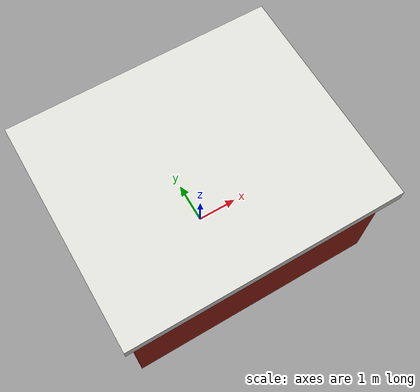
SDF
<?xml version="1.0"?>
<sdf version="1.9">
  <model name="house_alpha">
    <!-- Static: no physics/gravity interaction beyond being a solid,
         collidable box -- this is a target structure for the crash-test
         demo, not a simulated building with interior physics. -->
    <static>true</static>
    <link name="body">
      <collision name="collision">
        <geometry>
          <box>
            <size>6 5 3</size>
          </box>
        </geometry>
      </collision>
      <visual name="walls">
        <pose>0 0 1.5 0 0 0</pose>
        <geometry>
          <box>
            <size>6 5 3</size>
          </box>
        </geometry>
        <material>
          <ambient>0.65 0.15 0.1 1</ambient>
          <diffuse>0.65 0.15 0.1 1</diffuse>
        </material>
      </visual>
      <visual name="roof">
        <pose>0 0 3.15 0 0 0</pose>
        <geometry>
          <box>
            <size>6.4 5.4 0.3</size>
          </box>
        </geometry>
        <material>
          <ambient>0.9 0.9 0.88 1</ambient>
          <diffuse>0.9 0.9 0.88 1</diffuse>
        </material>
      </visual>
    </link>
  </model>
</sdf>
